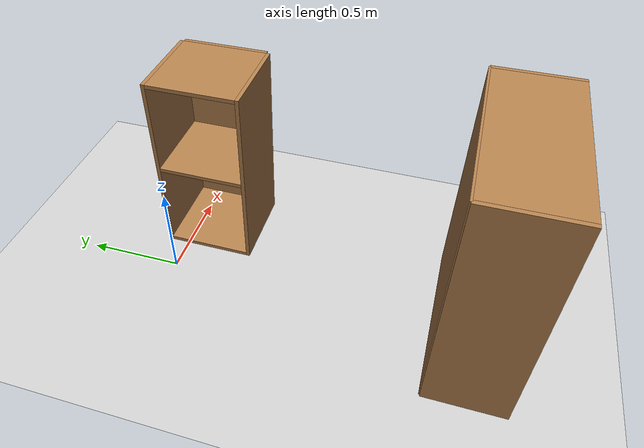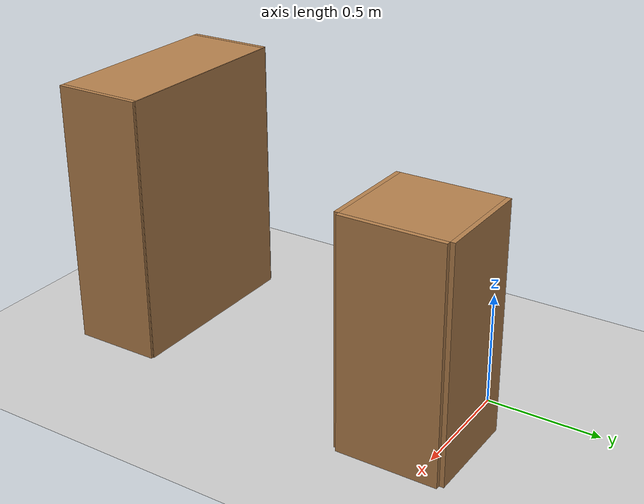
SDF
<sdf version="1.9">
 <world name="car_world">
  <physics name="1ms" type="ignored">
   <max_step_size>0.001</max_step_size>
   <real_time_factor>1</real_time_factor>
   <real_time_update_rate>1000</real_time_update_rate>
  </physics>
  <plugin name="gz::sim::systems::Physics" filename="ignition-gazebo-physics-system"/>
  <plugin name="gz::sim::systems::UserCommands" filename="ignition-gazebo-user-commands-system"/>
  <plugin name="gz::sim::systems::SceneBroadcaster" filename="ignition-gazebo-scene-broadcaster-system"/>
  <plugin name="gz::sim::systems::Contact" filename="ignition-gazebo-contact-system"/>
  <plugin name="ignition::gazebo::systems::Sensors" filename="ignition-gazebo-sensors-system"/>
  <plugin name="ignition::gazebo::systems::Clock" filename="ignition-gazebo-clock-system"/>
  <gravity>0 0 -9.8</gravity>
  <magnetic_field>6e-06 2.3e-05 -4.2e-05</magnetic_field>
  <atmosphere type="adiabatic"/>
  <scene><ambient>0.4 0.4 0.4 1</ambient><background>0.7 0.7 0.7 1</background><shadows>true</shadows></scene>
  <model name="ground_plane">
   <static>true</static>
   <link name="link">
    <collision name="collision">
     <geometry><plane><normal>0 0 1</normal><size>100 100</size></plane></geometry>
     <surface>
      <contact><collide_bitmask>65535</collide_bitmask></contact>
      <friction><ode><mu>100</mu><mu2>50</mu2></ode></friction>
     </surface>
    </collision>
    <visual name="visual">
     <cast_shadows>false</cast_shadows>
     <geometry><plane><normal>0 0 1</normal><size>1 1</size></plane></geometry>
     <material>
      <script><uri>file://media/materials/scripts/gazebo.material</uri><name>Gazebo/Grey</name></script>
     </material>
    </visual>
    <inertial>
     <mass>1</mass>
     <inertia><ixx>1</ixx><ixy>0</ixy><ixz>0</ixz><iyy>1</iyy><iyz>0</iyz><izz>1</izz></inertia>
    </inertial>
   </link>
  </model>
  <model name="Bookshelf">
   <static>true</static>
   <link name="link">
    <inertial>
     <mass>1</mass>
     <inertia><ixx>1</ixx><ixy>0</ixy><ixz>0</ixz><iyy>1</iyy><iyz>0</iyz><izz>1</izz></inertia>
    </inertial>
    <collision name="back">
     <pose>0 0.005 0.6 0 -0 0</pose>
     <geometry><box><size>0.9 0.01 1.2</size></box></geometry>
    </collision>
    <visual name="visual1">
     <pose>0 0.005 0.6 0 -0 0</pose>
     <geometry><box><size>0.9 0.01 1.2</size></box></geometry>
     <material>
      <diffuse>1 1 1 1</diffuse>
      <script><uri>file://media/materials/scripts/gazebo.material</uri><name>Gazebo/Wood</name></script>
      <pbr>
       <metal>
        <albedo_map>https://fuel.ignitionrobotics.org/1.0/openrobotics/models/bookshelf/3/files/bookshelf_diffuse.jpg</albedo_map>
       </metal>
      </pbr>
     </material>
    </visual>
    <collision name="left_side">
     <pose>0.45 -0.195 0.6 0 -0 0</pose>
     <geometry><box><size>0.02 0.4 1.2</size></box></geometry>
    </collision>
    <visual name="visual2">
     <pose>0.45 -0.195 0.6 0 -0 0</pose>
     <geometry><box><size>0.02 0.4 1.2</size></box></geometry>
     <material>
      <diffuse>1 1 1 1</diffuse>
      <script><uri>file://media/materials/scripts/gazebo.material</uri><name>Gazebo/Wood</name></script>
      <pbr>
       <metal>
        <albedo_map>https://fuel.ignitionrobotics.org/1.0/openrobotics/models/bookshelf/3/files/bookshelf_diffuse.jpg</albedo_map>
       </metal>
      </pbr>
     </material>
    </visual>
    <collision name="right_side">
     <pose>-0.45 -0.195 0.6 0 -0 0</pose>
     <geometry><box><size>0.02 0.4 1.2</size></box></geometry>
    </collision>
    <visual name="visual3">
     <pose>-0.45 -0.195 0.6 0 -0 0</pose>
     <geometry><box><size>0.02 0.4 1.2</size></box></geometry>
     <material>
      <diffuse>1 1 1 1</diffuse>
      <script><uri>file://media/materials/scripts/gazebo.material</uri><name>Gazebo/Wood</name></script>
      <pbr>
       <metal>
        <albedo_map>https://fuel.ignitionrobotics.org/1.0/openrobotics/models/bookshelf/3/files/bookshelf_diffuse.jpg</albedo_map>
       </metal>
      </pbr>
     </material>
    </visual>
    <collision name="bottom">
     <pose>0 -0.195 0.03 0 -0 0</pose>
     <geometry><box><size>0.88 0.4 0.06</size></box></geometry>
    </collision>
    <visual name="visual4">
     <pose>0 -0.195 0.03 0 -0 0</pose>
     <geometry><box><size>0.88 0.4 0.06</size></box></geometry>
     <material>
      <diffuse>1 1 1 1</diffuse>
      <script><uri>file://media/materials/scripts/gazebo.material</uri><name>Gazebo/Wood</name></script>
      <pbr>
       <metal>
        <albedo_map>https://fuel.ignitionrobotics.org/1.0/openrobotics/models/bookshelf/3/files/bookshelf_diffuse.jpg</albedo_map>
       </metal>
      </pbr>
     </material>
    </visual>
    <collision name="top">
     <pose>0 -0.195 1.19 0 -0 0</pose>
     <geometry><box><size>0.88 0.4 0.02</size></box></geometry>
    </collision>
    <visual name="visual5">
     <pose>0 -0.195 1.19 0 -0 0</pose>
     <geometry><box><size>0.88 0.4 0.02</size></box></geometry>
     <material>
      <diffuse>1 1 1 1</diffuse>
      <script><uri>file://media/materials/scripts/gazebo.material</uri><name>Gazebo/Wood</name></script>
      <pbr>
       <metal>
        <albedo_map>https://fuel.ignitionrobotics.org/1.0/openrobotics/models/bookshelf/3/files/bookshelf_diffuse.jpg</albedo_map>
       </metal>
      </pbr>
     </material>
    </visual>
    <collision name="low_shelf">
     <pose>0 -0.195 0.43 0 -0 0</pose>
     <geometry><box><size>0.88 0.4 0.02</size></box></geometry>
    </collision>
    <visual name="visual6">
     <pose>0 -0.195 0.43 0 -0 0</pose>
     <geometry><box><size>0.88 0.4 0.02</size></box></geometry>
     <material>
      <diffuse>1 1 1 1</diffuse>
      <script><uri>file://media/materials/scripts/gazebo.material</uri><name>Gazebo/Wood</name></script>
      <pbr>
       <metal>
        <albedo_map>https://fuel.ignitionrobotics.org/1.0/openrobotics/models/bookshelf/3/files/bookshelf_diffuse.jpg</albedo_map>
       </metal>
      </pbr>
     </material>
    </visual>
    <collision name="high_shelf">
     <pose>0 -0.195 0.8 0 -0 0</pose>
     <geometry><box><size>0.88 0.4 0.02</size></box></geometry>
    </collision>
    <visual name="visual7">
     <pose>0 -0.195 0.8 0 -0 0</pose>
     <geometry><box><size>0.88 0.4 0.02</size></box></geometry>
     <material>
      <diffuse>1 1 1 1</diffuse>
      <script><uri>file://media/materials/scripts/gazebo.material</uri><name>Gazebo/Wood</name></script>
      <pbr>
       <metal>
        <albedo_map>https://fuel.ignitionrobotics.org/1.0/openrobotics/models/bookshelf/3/files/bookshelf_diffuse.jpg</albedo_map>
       </metal>
      </pbr>
     </material>
    </visual>
   </link>
   <pose>0.038494 -1.41548 0 0 -0 0</pose>
  </model>
  <model name="cabinet">
   <static>true</static>
   <link name="cabinet_bottom_plate">
    <inertial>
     <pose>0 0 -1 0 -0 0</pose>
     <inertia>
      <ixx>2.0499999999999998</ixx>
      <ixy>0</ixy>
      <ixz>0</ixz>
      <iyy>2.0499999999999998</iyy>
      <iyz>0</iyz>
      <izz>2.0499999999999998</izz>
     </inertia>
     <mass>25</mass>
    </inertial>
    <collision name="cabinet_bottom_plate_geom">
     <pose>0 0 0.01 0 -0 0</pose>
     <geometry><box><size>0.45 0.45 0.02</size></box></geometry>
    </collision>
    <visual name="cabinet_bottom_plate_geom_visual">
     <pose>0 0 0.01 0 -0 0</pose>
     <geometry><box><size>0.45 0.45 0.02</size></box></geometry>
     <material>
      <script><uri>file://media/materials/scripts/gazebo.material</uri><name>Gazebo/Wood</name></script>
     </material>
    </visual>
    <collision name="cabinet_bottom_plate_geom_cabinet_back_plate">
     <pose>0.235 0 0.51 0 -0 0</pose>
     <geometry><box><size>0.02 0.45 1.02</size></box></geometry>
    </collision>
    <visual name="cabinet_bottom_plate_geom_cabinet_back_plate_visual">
     <pose>0.235 0 0.51 0 -0 0</pose>
     <geometry><box><size>0.02 0.45 1.02</size></box></geometry>
     <material>
      <script><uri>file://media/materials/scripts/gazebo.material</uri><name>Gazebo/Wood</name></script>
     </material>
    </visual>
    <collision name="cabinet_bottom_plate_geom_cabinet_left_plate">
     <pose>0 0.235 0.51 0 -0 0</pose>
     <geometry><box><size>0.45 0.02 1.02</size></box></geometry>
    </collision>
    <visual name="cabinet_bottom_plate_geom_cabinet_left_plate_visual">
     <pose>0 0.235 0.51 0 -0 0</pose>
     <geometry><box><size>0.45 0.02 1.02</size></box></geometry>
     <material>
      <script><uri>file://media/materials/scripts/gazebo.material</uri><name>Gazebo/Wood</name></script>
     </material>
    </visual>
    <collision name="cabinet_bottom_plate_geom_cabinet_middle_plate">
     <pose>0 0 0.51 0 -0 0</pose>
     <geometry><box><size>0.45 0.45 0.02</size></box></geometry>
    </collision>
    <visual name="cabinet_bottom_plate_geom_cabinet_middle_plate_visual">
     <pose>0 0 0.51 0 -0 0</pose>
     <geometry><box><size>0.45 0.45 0.02</size></box></geometry>
     <material>
      <script><uri>file://media/materials/scripts/gazebo.material</uri><name>Gazebo/Wood</name></script>
     </material>
    </visual>
    <collision name="cabinet_bottom_plate_geom_cabinet_right_plate">
     <pose>0 -0.235 0.51 0 -0 0</pose>
     <geometry><box><size>0.45 0.02 1.02</size></box></geometry>
    </collision>
    <visual name="cabinet_bottom_plate_geom_cabinet_right_plate_visual">
     <pose>0 -0.235 0.51 0 -0 0</pose>
     <geometry><box><size>0.45 0.02 1.02</size></box></geometry>
     <material>
      <script><uri>file://media/materials/scripts/gazebo.material</uri><name>Gazebo/Wood</name></script>
     </material>
    </visual>
    <collision name="cabinet_bottom_plate_geom_cabinet_top_plate">
     <pose>0 0 1.01 0 -0 0</pose>
     <geometry><box><size>0.45 0.45 0.02</size></box></geometry>
    </collision>
    <visual name="cabinet_bottom_plate_geom_cabinet_top_plate_visual">
     <pose>0 0 1.01 0 -0 0</pose>
     <geometry><box><size>0.45 0.45 0.02</size></box></geometry>
     <material>
      <script><uri>file://media/materials/scripts/gazebo.material</uri><name>Gazebo/Wood</name></script>
     </material>
    </visual>
   </link>
   <pose>0.402214 -0.12139 0 0 -0 0</pose>
  </model>
  <light name="sun" type="directional">
   <pose>0 0 10 0 -0 0</pose>
   <intensity>1</intensity>
   <direction>-0.5 0.1 -0.9</direction>
   <diffuse>0.8 0.8 0.8 1</diffuse>
   <specular>0.2 0.2 0.2 1</specular>
   <attenuation>
    <range>1000</range>
    <linear>0.01</linear>
    <constant>0.90000000000000002</constant>
    <quadratic>0.001</quadratic>
   </attenuation>
   <spot><inner_angle>0</inner_angle><outer_angle>0</outer_angle><falloff>0</falloff></spot>
  </light>
 </world>
</sdf>
